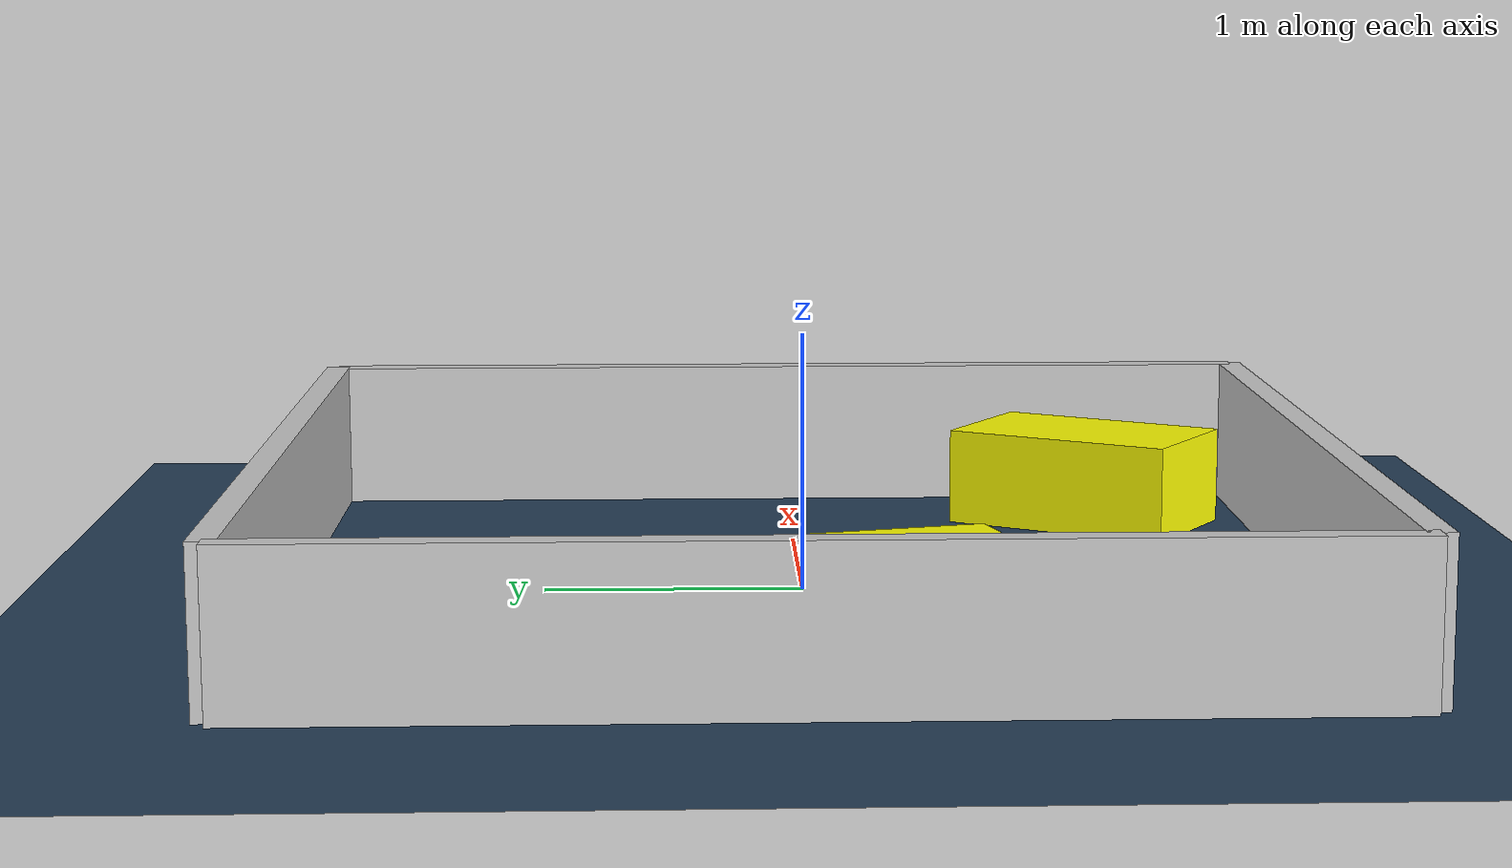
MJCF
<?xml version="1.0" ?>
<mujoco model="generated_environment">
  <option timestep="0.01" integrator="RK4" cone="elliptic"/>
  <default>
    <geom density="1"/>
  </default>
  <asset>
    <texture builtin="gradient" height="3072" rgb1="0.3 0.5 0.7" rgb2="0 0 0" type="skybox" width="512"/>
    <texture builtin="checker" height="300" mark="edge" markrgb="0.8 0.8 0.8" name="groundplane" rgb1="0.2 0.3 0.4" rgb2="0.1 0.2 0.3" type="2d" width="300"/>
    <material name="groundplane" reflectance="0.2" texrepeat="5 5" texture="groundplane" texuniform="true"/>
    <material name="robot" rgba="0.0 1.0 0.0 1"/>
  </asset>
  <worldbody>
    <light dir="0 0 -1" directional="true" pos="0 0 1.5"/>
    <geom condim="4" friction="1.0 0.005 0.001" material="groundplane" name="floor" size="0 0 0.05" type="plane"/>
    <body name="walls">
      <geom name="wall_1" condim="4" pos="-2.0 0.0 0.3" rgba="0.800000011920929 0.800000011920929 0.800000011920929 1.0" size="0.05 2.0 0.3" type="box"/>
      <geom name="wall_2" condim="4" pos="2.0 0.0 0.3" rgba="0.800000011920929 0.800000011920929 0.800000011920929 1.0" size="0.05 2.0 0.3" type="box"/>
      <geom name="wall_3" condim="4" pos="0.0 -2.0 0.3" rgba="0.800000011920929 0.800000011920929 0.800000011920929 1.0" size="2.0 0.05 0.3" type="box"/>
      <geom name="wall_4" condim="4" pos="0.0 2.0 0.3" rgba="0.800000011920929 0.800000011920929 0.800000011920929 1.0" size="2.0 0.05 0.3" type="box"/>
    </body>
    <body name="robot">
      <joint name="joint_x" type="slide" pos="0 0 0" axis="1 0 0"/>
      <joint name="joint_y" type="slide" pos="0 0 0" axis="0 1 0"/>
      <geom name="robot" type="sphere" pos="0.01624802739231912 -0.6493995071429393 0.2" size="0.05" mass="5." friction="1.0 0.005 0.0001" condim="4"/>
      <site name="sensor_ball"/>
    </body>
    <body name="obstacle_1_movable">
      <geom name="obstacle_1_movable" condim="4" pos="1.3644843796137065 -1.2666329152037856 0.2" euler="0 0 148.31795357731582" friction="1.0 0.005 0.001" rgba="1 1 0 1" size="0.30244081050256383 0.49374247145875955 0.2" type="box" mass="0.1"/>
      <joint type="free"/>
    </body>
    <body name="obstacle_2_movable">
      <geom name="obstacle_2_movable" condim="4" pos="-1.199632280714316 -0.2597769206400746 0.2" euler="0 0 194.69383538292968" friction="1.0 0.005 0.001" rgba="1 1 0 1" size="0.33848246598445236 0.4720891988334056 0.2" type="box" mass="0.1"/>
      <joint type="free"/>
    </body>
  </worldbody>
  <actuator>
    <motor name="actuator_x" joint="joint_x" gear="1" ctrlrange="-1 1"/>
    <motor name="actuator_y" joint="joint_y" gear="1" ctrlrange="-1 1"/>
  </actuator>
</mujoco>
